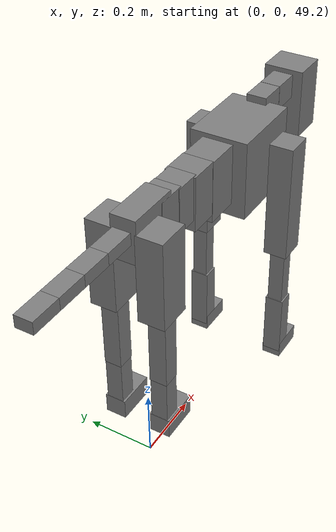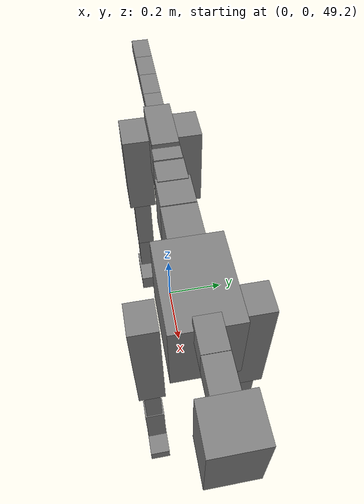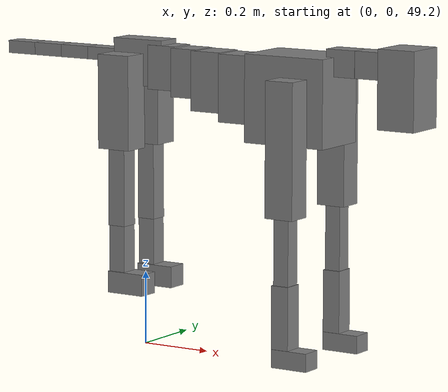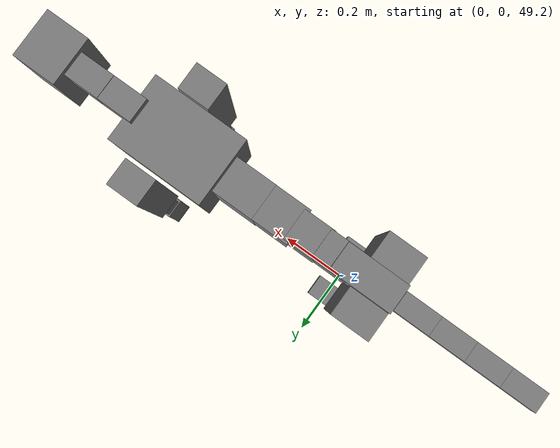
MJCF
<mujoco model="dog">

    <default>
        <joint armature="0.02" stiffness="1" damping="0.2" limited="true"/>
        <geom condim="3" friction="1 0.05 0.05" margin="0.01"/>
        <motor ctrllimited="true" ctrlrange="-1.0 1.0" forcelimited="true" gear="50"/>
    </default>

    <compiler inertiafromgeom="true" angle="radian"/>

    <option timestep="0.016" iterations="50" tolerance="1e-10" solver="Newton" jacobian="dense" cone="pyramidal"/>

    <size nconmax="20000" njmax="60000" nstack="5000000"/>
    <visual>
        <map force="0.1" zfar="30"/>
        <rgba haze="0.15 0.25 0.35 1"/>
        <quality shadowsize="2048"/>
        <global offwidth="800" offheight="800"/>
    </visual>

    <asset>
        <texture type="skybox" builtin="gradient" rgb1="0.3 0.5 0.7" rgb2="0 0 0" width="512" height="512"/>
        <texture name="texplane" type="2d" builtin="checker" rgb1=".2 .3 .4" rgb2=".1 0.15 0.2" width="512" height="512"
                 mark="cross" markrgb=".8 .8 .8"/>
        <texture name="texgeom" type="cube" builtin="flat" mark="cross" width="127" height="1278" rgb1="0.8 0.6 0.4"
                 rgb2="0.8 0.6 0.4" markrgb="1 1 1" random="0.01"/>

        <material name="matplane" reflectance="0.3" texture="texplane" texrepeat="1 1" texuniform="true"/>
        <material name="matgeom" texture="texgeom" texuniform="true" rgba="0.8 0.6 .4 1"/>
    </asset>

    <worldbody>
        <geom name="floor" pos="0 0 0" size="0 0 .25" type="plane" material="matplane" condim="3"/>

        <light directional="false" diffuse=".2 .2 .2" specular="0 0 0" pos="0 0 5" dir="0 0 -1" castshadow="false"/>
        <light mode="targetbodycom" target="torso" directional="false" diffuse=".8 .8 .8" specular="0.3 0.3 0.3"
               pos="0 0 4.0" dir="0 0 -1"/>

        <body name="root" pos="0 0 50">
            <freejoint name="root_1"/>
            <geom type="box" pos="0 0 -0.02" size="0.0774  0.0358  0.063" density="2030"/>

            <body name="spine1" pos="0.054 0 0">
                <joint name="spine1_y" axis="0 1 0" range="0 0.7" limited="true"/>
                <geom type="box" pos="0.02375 0 -0.03" size="0.04375  0.0375  0.05985" density="2030"/>

                <body name="spine2" pos="0.0612 0 0">
                    <joint name="spine2_y" axis="0 1 0" range="-0.15 0.15" limited="true"/>
                    <geom type="box" pos="0.03555  0  -0.04" size="0.04055  0.039  0.06615" density="2030"/>

                    <body name="spine3" pos="0.0730 0 0">
                        <joint name="spine3_y" axis="0 1 0" range="-0.15 0.15" limited="true"/>
                        <geom type="box" pos="0.03555  0  -0.057" size="0.04555  0.0445  0.081" density="2030"/>

                        <body name="spine4" pos="0.0780 0 0">
                            <joint name="spine4_y" axis="0 1 0" range="-0.15 0.15" limited="true"/>
                            <geom type="box" pos="0.05265  0  -0.07" size="0.05265  0.045  0.09135" density="2030"/>

                            <body name="torso" pos="0.1082 0 0">
                                <joint name="torso_y" axis="0 1 0" range="-0.15 0.15" limited="true"/>
                                <geom type="box" pos="0.11925  0  -0.085" size="0.11925  0.085  0.11745"
                                      density="2030"/>

                                <body name="neck1" pos="0.2160  0   0.0180">
                                    <joint name="neck1_y" axis="0 1 0" range="-1.2  -1" limited="true"/>
                                    <geom type="box" pos="0.0423  0  0" size="0.0423  0.03  0.036" density="2325"/>

                                    <body name="neck2" pos="0.0853  0  0">
                                        <joint name="neck2_y" axis="0 1 0" range="0.1  0" limited="true"/>
                                        <geom type="box" pos="0.0423  0  0" size="0.0423  0.03  0.036" density="2325"/>

                                        <body name="head" pos="0.0853  0  0">
                                            <joint name="head_y" axis="0 1 0" range="-0.3  -0.2" limited="true"/>
                                            <geom type="box" pos="0.0531  0  -0.055" size="0.0531  0.06  0.1044"
                                                  density="4030"/>

                                        </body>
                                    </body>
                                </body>

                                <body name="front_shoulder" pos="0.156  0   -0.0480">
                                    <joint name="front_shoulder_y" axis="0 1 0" range="-1 1.5" limited="true"/>
                                    <geom type="box" pos="0 0.13 -0.1535" size="0.0412  0.0352  0.1801" density="1158"/>
                                    <geom type="box" pos="0 -0.13 -0.1535" size="0.0412  0.0352  0.1801"
                                          density="1158"/>

                                    <body name="front_elbow" pos="0  0  -0.3070">
                                        <joint name="front_elbow_y" axis="0 1 0" range="-2 0" limited="true"/>
                                        <geom type="box" pos="0 0.13 -0.1080" size="0.0220  0.0225  0.1080"
                                              density="1081"/>
                                        <geom type="box" pos="0 -0.13 -0.1080" size="0.0220  0.0225  0.1080"
                                              density="1081"/>

                                        <body name="front_wrist" pos="0  0  -0.2160">
                                            <joint name="front_wrist_y" axis="0 1 0" range="-0.2 0" limited="true"/>
                                            <geom type="box" pos="0 0.13 -0.0855" size="0.0249  0.0277  0.0986"
                                                  density="1664"/>
                                            <geom type="box" pos="0 -0.13 -0.0855" size="0.0249  0.0277  0.0986"
                                                  density="1664"/>

                                            <body name="front_finger_end" pos="0  0  -0.1710">
                                                <joint name="front_finger_y" axis="0 1 0" range="-0.4 1"
                                                       limited="true"/>
                                                <geom type="box" pos="0.0288  0.13  -0.0095"
                                                      size="0.0528  0.0288  0.0245" density="1515"/>
                                                <geom type="box" pos="0.0288  -0.13  -0.0095"
                                                      size="0.0528  0.0288  0.0245" density="1515"/>

                                            </body>

                                        </body>
                                    </body>
                                </body>

                            </body>
                        </body>
                    </body>
                </body>
            </body>

            <body name="back_hip" pos="-0.03 0 -0.018">
                <joint name="back_hip_y" axis="0 1 0" range="-1.5 0.3" limited="true"/>
                <geom type="box" pos="0 0.07 -0.1056" size="0.0491  0.0385  0.1284" density="1154"/>
                <geom type="box" pos="0 -0.07 -0.1056" size="0.0491  0.0385  0.1284" density="1154"/>

                <body name="back_knee" pos="0  0  -0.2112">
                    <joint name="back_knee_y" axis="0 1 0" range="0 2.8" limited="true"/>
                    <geom type="box" pos="0 0.07 -0.1086" size="0.0255  0.0252  0.1242" density="1227"/>
                    <geom type="box" pos="0 -0.07 -0.1086" size="0.0255  0.0252  0.1242" density="1227"/>

                    <body name="back_ankle" pos="0  0  -0.2173">
                        <joint name="back_ankle_y" axis="0 1 0" range="-2.2 0" limited="true"/>
                        <geom type="box" pos="0 0.07 -0.0784" size="0.0243  0.0243  0.0897" density="1284"/>
                        <geom type="box" pos="0 -0.07 -0.0784" size="0.0243  0.0243  0.0897" density="1284"/>

                        <body name="back_toe_end" pos="0  0  -0.1568">
                            <joint name="back_toe_y" axis="0 1 0" range="-0.4 1" limited="true"/>
                            <geom type="box" pos="0.0304  0.07  -0.0145" size="0.0557  0.0304  0.0295" density="1515"/>
                            <geom type="box" pos="0.0304  -0.07  -0.0145" size="0.0557  0.0304  0.0295" density="1515"/>

                        </body>
                    </body>
                </body>
            </body>

            <body name="tail1" pos="-0.074 0 -0.006">
                <joint name="tail1_y" axis="0 1 0" range="-0.2 0.2" limited="true"/>
                <geom type="box" pos="-0.0536  0  0" size="0.045  0.025  0.0175" density="1587"/>

                <body name="tail2" pos="-0.09 0 0">
                    <joint name="tail2_y" axis="0 1 0" range="-0.2 0.2" limited="true"/>
                    <geom type="box" pos="-0.0536  0  0" size="0.045  0.025  0.0175" density="1587"/>

                    <body name="tail3" pos="-0.09 0 0">
                        <joint name="tail3_y" axis="0 1 0" range="-0.2 0.2" limited="true"/>
                        <geom type="box" pos="-0.0536  0  0" size="0.045  0.025  0.0175" density="1587"/>

                        <body name="tail4" pos="-0.09 0 0">
                            <joint name="tail4_y" axis="0 1 0" range="-0.2 0.2" limited="true"/>
                            <geom type="box" pos="-0.0536  0  0" size="0.045  0.025  0.0175" density="1587"/>

                        </body>
                    </body>
                </body>
            </body>
        </body>
    </worldbody>

    <actuator>
        <motor joint="spine1_y" forcerange="-150 150     "/>
        <motor joint="spine2_y" forcerange="-150 150     "/>
        <motor joint="spine3_y" forcerange="-150 150     "/>
        <motor joint="spine4_y" forcerange="-150 150     "/>
        <motor joint="torso_y" forcerange="-150 150     "/>
        <motor joint="neck1_y" forcerange="-100 100       "/>
        <motor joint="neck2_y" forcerange="-100 100       "/>
        <motor joint="head_y" forcerange="-150 150       "/>
        <motor joint="front_shoulder_y" forcerange="-197.15 137.34"/>
        <motor joint="front_elbow_y" forcerange="-118.57 145.17"/>
        <motor joint="front_wrist_y" forcerange="-87.11 134.50"/>
        <motor joint="front_finger_y" forcerange="-42.97 70.58"/>
        <motor joint="back_hip_y" forcerange="-344.66 369.19"/>
        <motor joint="back_knee_y" forcerange="-343.10 223.11"/>
        <motor joint="back_angle_y" forcerange="-53.46 234.57"/>
        <motor joint="back_toe_y" forcerange="-30.85 132.15"/>
        <motor joint="tail1_y" forcerange="-50 50     "/>
        <motor joint="tail2_y" forcerange="-50 50     "/>
        <motor joint="tail3_y" forcerange="-50 50     "/>
        <motor joint="tail4_y" forcerange="-50 50     "/>
    </actuator>
</mujoco>
